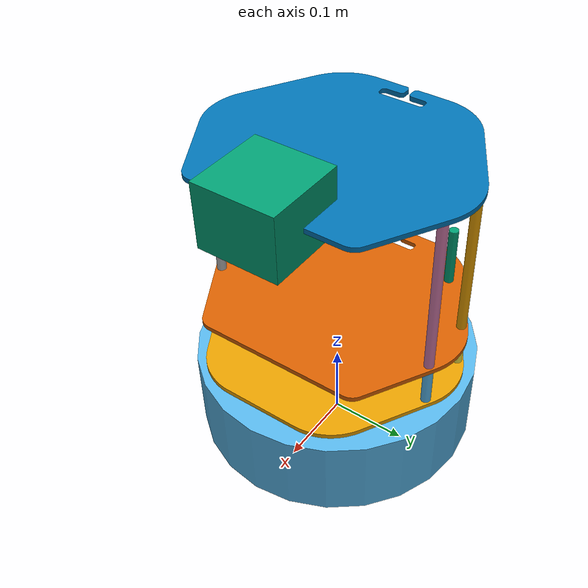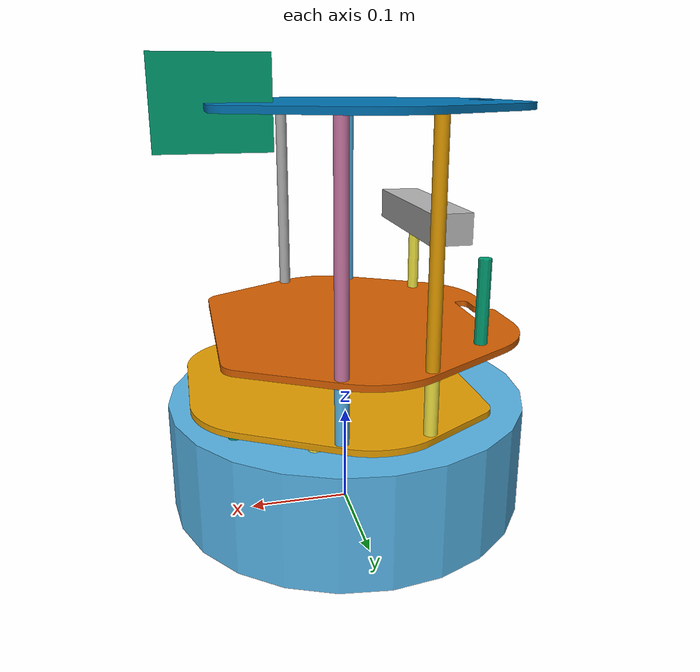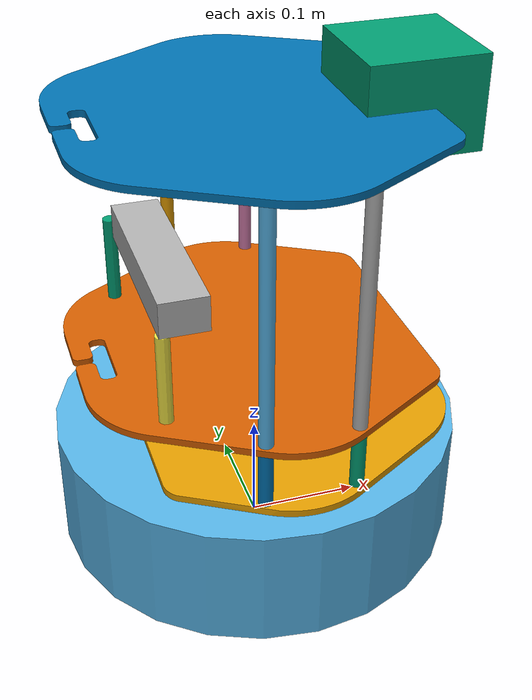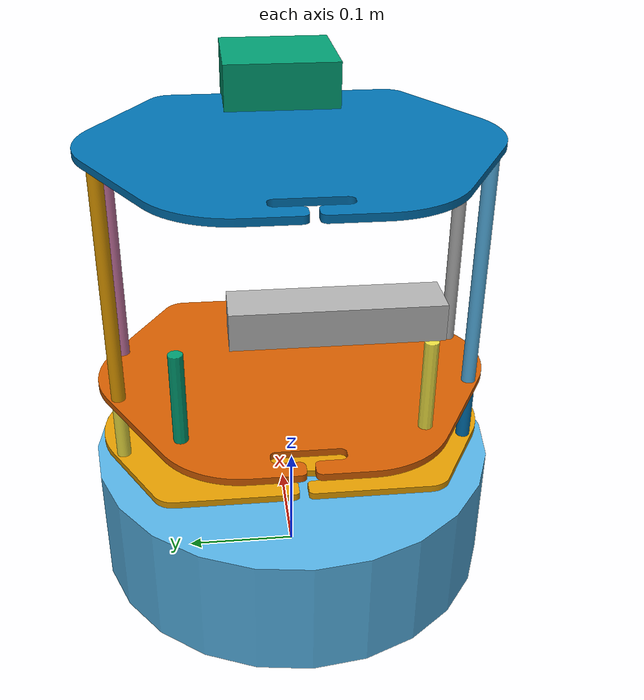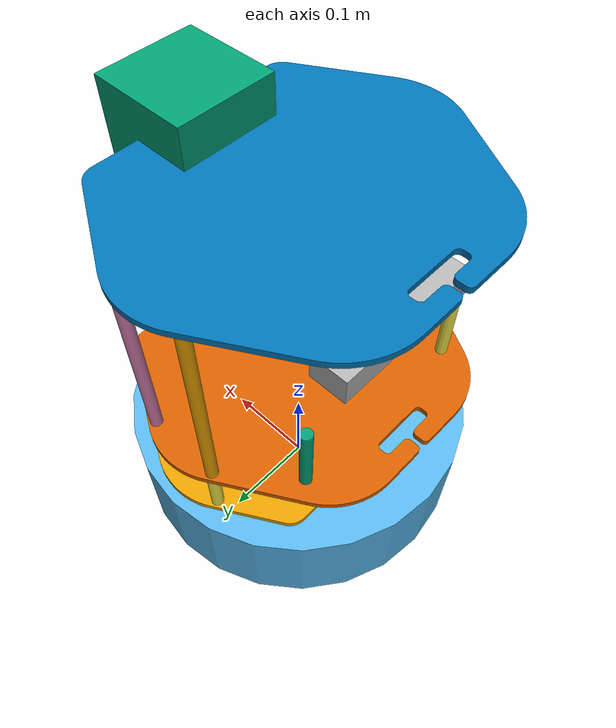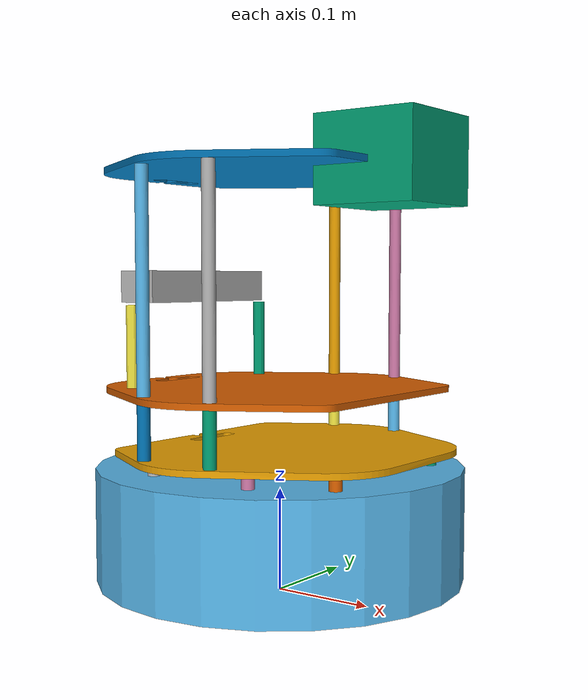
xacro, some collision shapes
<?xml version="1.0"?>
<!--
    - Base      : kobuki
    - Stacks    : hexagons
    - 3d Sensor : astra
    - top_plate : urg04lx
-->
<robot name="turtlebot" xmlns:xacro="http://ros.org/wiki/xacro">

  <xacro:arg name="prefix_frame" default=""/>
  <xacro:include filename="$(find turtlebot_description)/urdf/turtlebot_library_multi.urdf.xacro" />

  <xacro:kobuki prefix_frame="$(arg prefix_frame)"/>
  <xacro:stack_hexagons prefix_frame="$(arg prefix_frame)"  parent="$(arg prefix_frame)base_link"/>
  <xacro:sensor_astra prefix_frame="$(arg prefix_frame)" parent="$(arg prefix_frame)base_link"/>
  <sensor_hokuyo_urg04lx prefix="$(arg prefix_frame)" parent="$(arg prefix_frame)plate_top_link" >
		<origin xyz="0.137 0 0.0525" rpy="0 0 0" />
  </sensor_hokuyo_urg04lx>

  <!-- here add the arm -->

</robot>

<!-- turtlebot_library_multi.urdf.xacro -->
<!--
  The complete turtlebot library of xacros for easy reference
 -->
<robot xmlns:xacro="http://ros.org/wiki/xacro">
  <!-- General -->
  <xacro:include filename="$(find turtlebot_description)/urdf/common_properties.urdf.xacro"/>
  <xacro:include filename="$(find turtlebot_description)/urdf/turtlebot_properties.urdf.xacro"/>
  <!-- Bases -->
  <!--xacro:include filename="$(find create_description)/urdf/create.urdf.xacro"/-->
  <xacro:include filename="$(find turtlebot_description)/urdf/kobuki_multi.urdf.xacro" />
  <!-- Stacks -->
  <xacro:include filename="$(find turtlebot_description)/urdf/stacks/circles.urdf.xacro"/>
  <xacro:include filename="$(find turtlebot_description)/urdf/stacks/hexagons.urdf.xacro"/>
  <xacro:include filename="$(find turtlebot_description)/urdf/stacks/nostacks.urdf.xacro"/>
  <!-- 3D Sensors -->
  <xacro:include filename="$(find turtlebot_description)/urdf/sensors/kinect.urdf.xacro"/>
  <xacro:include filename="$(find turtlebot_description)/urdf/sensors/asus_xtion_pro.urdf.xacro"/>
  <xacro:include filename="$(find turtlebot_description)/urdf/sensors/asus_xtion_pro_offset.urdf.xacro"/>
  <xacro:include filename="$(find turtlebot_description)/urdf/sensors/astra.urdf.xacro"/>
  <!-- 2D Sensors -->
  <xacro:include filename="$(find turtlebot_description)/urdf/sensors/rplidar.urdf.xacro"/>
  <xacro:include filename="$(find turtlebot_description)/urdf/sensors/hokuyo_urg04lx.urdf.xacro"/>
  <!-- Arms -->

</robot>

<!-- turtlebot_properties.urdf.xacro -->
<robot>
  <!--
    These properties must be observed by any machine
    that wants to be defined as a turtlebot. Refer
    to the REP for more details.

    http://www.ros.org/reps/rep-0119.html
   -->

	<property name="cam_px" value="-0.087" />
	<property name="cam_pz" value="0.2870" />
	<property name="cam_or" value="0" />
	<property name="cam_op" value="0" />
	<property name="cam_oy" value="0" />
</robot>

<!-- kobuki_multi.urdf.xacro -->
<robot name="kobuki" xmlns:xacro="http://ros.org/wiki/xacro">
  <xacro:include filename="$(find turtlebot_description)/urdf/common_properties.urdf.xacro"/>
  <xacro:include filename="$(find turtlebot_description)/urdf/kobuki_gazebo.urdf.xacro"/>

  <!-- Kobuki -->
  <xacro:macro name="kobuki" params="prefix_frame">
    <link name="${prefix_frame}base_footprint"/>
    <joint name="${prefix_frame}base_joint" type="fixed">
      <origin xyz="0 0 0.0102" rpy="0 0 0" />
      <parent link="${prefix_frame}base_footprint"/>
      <child link="${prefix_frame}base_link" />
    </joint>
    <link name="${prefix_frame}base_link">
      <visual>
        <geometry>
          <!-- new mesh -->
          <mesh filename="package://kobuki_description/meshes/main_body.dae" />
        </geometry>
        <origin xyz="0.001 0 0.05199" rpy="0 0 0"/>
      </visual>
      <collision name="base">
        <geometry>
          <cylinder length="0.10938" radius="0.178"/>
        </geometry>
        <origin xyz="0.0 0 0.05949" rpy="0 0 0"/>
      </collision>
      <inertial>
        <!-- COM experimentally determined -->
        <origin xyz="0.01 0 0"/>
        <mass value="2.4"/> <!-- 2.4/2.6 kg for small/big battery pack -->
        <inertia ixx="0.019995" ixy="0.0" ixz="0.0"
                 iyy="0.019995" iyz="0.0"
                 izz="0.03675" />
      </inertial>
    </link>

    <joint name="${prefix_frame}wheel_left_joint" type="continuous">
      <parent link="${prefix_frame}base_link"/>
      <child link="${prefix_frame}wheel_left_link"/>
      <origin xyz="0.00 ${0.23/2} 0.0250" rpy="${-M_PI/2} 0 0"/>
      <axis xyz="0 0 1"/>
    </joint>
    <link name="${prefix_frame}wheel_left_link">
      <visual>
        <geometry>
          <mesh filename="package://kobuki_description/meshes/wheel.dae"/>
        </geometry>
        <origin xyz="0 0 0" rpy="0 0 0"/>
      </visual>
      <collision>
        <geometry>
          <cylinder length="0.0206" radius="0.0352"/>
        </geometry>
        <origin rpy="0 0 0" xyz="0 0 0"/>
      </collision>
      <inertial>
        <mass value="0.01" />
        <origin xyz="0 0 0" />
        <inertia ixx="0.001" ixy="0.0" ixz="0.0"
                 iyy="0.001" iyz="0.0"
                 izz="0.001" />
      </inertial>
    </link>

    <joint name="${prefix_frame}wheel_right_joint" type="continuous">
      <parent link="${prefix_frame}base_link"/>
      <child link="${prefix_frame}wheel_right_link"/>
      <origin xyz="0.00 -${0.23/2} 0.0250" rpy="${-M_PI/2} 0 0"/>
      <axis xyz="0 0 1"/>
    </joint>
    <link name="${prefix_frame}wheel_right_link">
      <visual>
        <geometry>
          <mesh filename="package://kobuki_description/meshes/wheel.dae"/>
        </geometry>
        <origin xyz="0 0 0" rpy="0 0 0"/>
      </visual>
      <collision>
        <geometry>
          <cylinder length="0.0206" radius="0.0350"/>
        </geometry>
        <origin rpy="0 0 0" xyz="0 0 0"/>
      </collision>
      <inertial>
        <mass value="0.01" />
        <origin xyz="0 0 0" />
        <inertia ixx="0.001" ixy="0.0" ixz="0.0"
                 iyy="0.001" iyz="0.0"
                 izz="0.001" />
      </inertial>
    </link>

    <joint name="${prefix_frame}caster_front_joint" type="fixed">
      <parent link="${prefix_frame}base_link"/>
      <child link="${prefix_frame}caster_front_link"/>
      <origin xyz="0.115 0.0 0.007" rpy="${-M_PI/2} 0 0"/>
    </joint>
    <link name="${prefix_frame}caster_front_link">
      <collision>
        <geometry>
          <cylinder length="0.0176" radius="0.017"/>
        </geometry>
        <origin rpy="0 0 0" xyz="0 0 0"/>
      </collision>
      <inertial>
        <mass value="0.01" />
        <origin xyz="0 0 0" />
        <inertia ixx="0.001" ixy="0.0" ixz="0.0"
                 iyy="0.001" iyz="0.0"
                 izz="0.001" />
      </inertial>
    </link>

    <joint name="${prefix_frame}caster_back_joint" type="fixed">
      <parent link="${prefix_frame}base_link"/>
      <child link="${prefix_frame}caster_back_link"/>
      <origin xyz="-0.135 0.0 0.009" rpy="${-M_PI/2} 0 0"/>
    </joint>
    <link name="${prefix_frame}caster_back_link">
      <collision>
        <geometry>
          <cylinder length="0.0176" radius="0.017"/>
        </geometry>
        <origin rpy="0 0 0" xyz="0 0 0"/>
      </collision>
      <inertial>
        <mass value="0.01" />
        <origin xyz="0 0 0" />
        <inertia ixx="0.001" ixy="0.0" ixz="0.0"
                 iyy="0.001" iyz="0.0"
                 izz="0.001" />
      </inertial>
    </link>

    <!-- Kobuki's sensors -->
    <joint name="${prefix_frame}gyro_joint" type="fixed">
      <axis xyz="0 1 0"/>
      <origin xyz="0.056 0.062 0.0202" rpy="0 0 0"/>
      <parent link="${prefix_frame}base_link"/>
      <child link="${prefix_frame}gyro_link"/>
    </joint>
    <link name="${prefix_frame}gyro_link">
      <inertial>
        <mass value="0.001"/>
        <origin xyz="0 0 0" rpy="0 0 0"/>
        <inertia ixx="0.0001" ixy="0" ixz="0"
                 iyy="0.000001" iyz="0"
                 izz="0.0001"/>
      </inertial>
    </link>

    <joint name="${prefix_frame}cliff_sensor_left_joint" type="fixed">
      <origin xyz="0.08734 0.13601 0.0214" rpy="0 ${M_PI/2} 0" />
      <parent link="${prefix_frame}base_link"/>
      <child link="${prefix_frame}cliff_sensor_left_link" />
    </joint>
    <link name="${prefix_frame}cliff_sensor_left_link">
      <inertial>
        <mass value="0.0001" />
        <origin xyz="0 0 0" />
        <inertia ixx="0.0001" ixy="0.0" ixz="0.0"
                 iyy="0.0001" iyz="0.0"
                 izz="0.0001" />
      </inertial>
    </link>

    <joint name="${prefix_frame}cliff_sensor_right_joint" type="fixed">
      <origin xyz="0.085 -0.13601 0.0214" rpy="0 ${M_PI/2} 0" />
      <parent link="${prefix_frame}base_link"/>
      <child link="${prefix_frame}cliff_sensor_right_link" />
    </joint>
    <link name="${prefix_frame}cliff_sensor_right_link">
      <inertial>
        <mass value="0.0001" />
        <origin xyz="0 0 0" />
        <inertia ixx="0.0001" ixy="0.0" ixz="0.0"
                 iyy="0.0001" iyz="0.0"
                 izz="0.0001" />
      </inertial>
    </link>

    <joint name="${prefix_frame}cliff_sensor_front_joint" type="fixed">
      <origin xyz="0.156 0.00 0.0214" rpy="0 ${M_PI/2} 0" />
      <parent link="${prefix_frame}base_link"/>
      <child link="${prefix_frame}cliff_sensor_front_link" />
    </joint>
    <link name="${prefix_frame}cliff_sensor_front_link">
      <inertial>
        <mass value="0.0001" />
        <origin xyz="0 0 0" />
        <inertia ixx="0.0001" ixy="0.0" ixz="0.0"
                 iyy="0.0001" iyz="0.0"
                 izz="0.0001" />
      </inertial>
    </link>

    <!-- Kobuki Gazebo simulation details -->
    <xacro:kobuki_sim prefix_frame="${prefix_frame}"/>

  </xacro:macro>

</robot>

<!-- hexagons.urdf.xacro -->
<!--
  Hexagon stacks
 -->
<robot name="stack_hexagons" xmlns:xacro="http://ros.org/wiki/xacro">
  <xacro:include filename="$(find turtlebot_description)/urdf/common_properties.urdf.xacro"/>

  <!-- Xacro properties -->
  <xacro:property name="M_SCALE" value="0.001"/>

  <!-- Xacro macros -->
  <!-- Pole macros -->
  <xacro:macro name="stack_bottom_pole" params="prefix_frame parent number x_loc y_loc z_loc">
    <joint name="${prefix_frame}pole_bottom_${number}_joint" type="fixed">
      <origin xyz="${x_loc} ${y_loc} ${z_loc}" rpy="0 0 0"/>
      <parent link="${parent}"/>
      <child link="${prefix_frame}pole_bottom_${number}_link"/>
    </joint>
    <link name="${prefix_frame}pole_bottom_${number}_link">
      <visual>
        <origin xyz="0 0 0" rpy="0 0 0"/>
        <geometry>
          <mesh filename="package://turtlebot_description/meshes/stacks/hexagons/pole_bottom.dae"/>
        </geometry>
      </visual>
      <collision>
        <origin xyz="0 0 0" rpy="0 0 0"/>
        <geometry>
          <cylinder length="0.0492" radius="0.006"/>
        </geometry>
      </collision>
      <inertial>
        <mass value="0.008"/>
        <origin xyz="0 0 0" rpy="0 0 0"/>
        <inertia ixx="0.000001686" ixy="0.0" ixz="0.0"
                 iyy="0.000001686" iyz="0.0"
                 izz="0.000000144"/>
      </inertial>
    </link>
  </xacro:macro>

  <xacro:macro name="stack_middle_pole" params="prefix_frame parent number x_loc y_loc z_loc">
    <joint name="${prefix_frame}pole_middle_${number}_joint" type="fixed">
      <origin xyz="${x_loc} ${y_loc} ${z_loc}" rpy="0 0 0" />
      <parent link="${parent}"/>
      <child link="${prefix_frame}pole_middle_${number}_link"/>
    </joint>
    <link name="${prefix_frame}pole_middle_${number}_link">
      <visual>
        <origin xyz="0 0 0" rpy="0 ${M_PI} 0"/>
        <geometry>
          <mesh filename="package://turtlebot_description/meshes/stacks/hexagons/pole_middle.dae"/>
        </geometry>
      </visual>
      <collision>
        <origin xyz="0 0 0" rpy="0 0 0"/>
        <geometry>
          <cylinder length="0.0608" radius="0.006"/>
        </geometry>
      </collision>
      <inertial>
        <mass value="0.012"/>
        <origin xyz="0 0 0"/>
        <inertia ixx="0.000003805" ixy="0.0" ixz="0.0"
                 iyy="0.000003805" iyz="0.0"
                 izz="0.000000216"/>
      </inertial>
    </link>
  </xacro:macro>

  <xacro:macro name="stack_top_pole" params="prefix_frame parent number x_loc y_loc z_loc">
    <joint name="${prefix_frame}pole_top_${number}_joint" type="fixed">
      <origin xyz="${x_loc} ${y_loc} ${z_loc}" rpy="0 0 0"/>
      <parent link="${parent}"/>
      <child link="${prefix_frame}pole_top_${number}_link"/>
    </joint>
    <link name="${prefix_frame}pole_top_${number}_link">
      <visual>
        <origin xyz=" 0 0 0" rpy="0 0 0"/>
        <geometry>
          <mesh filename="package://turtlebot_description/meshes/stacks/hexagons/pole_top.dae"/>
        </geometry>
      </visual>
      <collision>
        <origin xyz="0 0 0" rpy="0 0 0"/>
        <geometry>
          <cylinder length="0.2032" radius="0.006"/>
        </geometry>
      </collision>
      <inertial>
        <mass value="0.060"/>
        <origin xyz="0 0 0"/>
        <inertia ixx="0.000206991" ixy="0.0" ixz="0.0"
                 iyy="0.000206991" iyz="0.0"
                 izz="0.000001080"/>
      </inertial>
    </link>
  </xacro:macro>

  <xacro:macro name="stack_3d_sensor_pole" params="prefix_frame parent number x_loc y_loc z_loc">
    <joint name="${prefix_frame}pole_kinect_${number}_joint" type="fixed">
      <origin xyz="${x_loc} ${y_loc} ${z_loc}" rpy="0 0 0"/>
      <parent link="${parent}"/>
      <child link="${prefix_frame}pole_kinect_${number}_link"/>
    </joint>
    <link name="${prefix_frame}pole_kinect_${number}_link">
      <visual>
        <origin xyz="0 0 -0.01" rpy="0 0 0"/>
        <geometry>
          <mesh filename="package://turtlebot_description/meshes/sensors/sensor_pole.dae" />
        </geometry>
      </visual>
      <collision>
        <origin xyz="0 0 0" rpy="0 0 0"/>
        <geometry>
          <cylinder length="0.0936" radius="0.006"/>
        </geometry>
      </collision>
      <inertial>
        <mass value="0.020"/>
        <origin xyz="0 0 0"/>
        <inertia ixx="0.000014782" ixy="0.0" ixz="0.0"
                 iyy="0.000014782" iyz="0.0"
                 izz="0.000000360"/>
      </inertial>
    </link>
  </xacro:macro>

  <xacro:macro name="stack_hexagons" params="prefix_frame parent">
    <stack_bottom_pole prefix_frame="${prefix_frame}" parent="${parent}" number="0" x_loc= "0.120" y_loc= "0.082" z_loc="0.1028"/>
    <stack_bottom_pole prefix_frame="${prefix_frame}" parent="${parent}" number="1" x_loc= "0.055" y_loc= "0.120" z_loc="0.1028"/>
    <stack_bottom_pole prefix_frame="${prefix_frame}" parent="${parent}" number="2" x_loc="-0.055" y_loc= "0.120" z_loc="0.1028"/>
    <stack_bottom_pole prefix_frame="${prefix_frame}" parent="${parent}" number="3" x_loc= "0.120" y_loc="-0.082" z_loc="0.1028"/>
    <stack_bottom_pole prefix_frame="${prefix_frame}" parent="${parent}" number="4" x_loc= "0.055" y_loc="-0.120" z_loc="0.1028"/>
    <stack_bottom_pole prefix_frame="${prefix_frame}" parent="${parent}" number="5" x_loc="-0.055" y_loc="-0.120" z_loc="0.1028"/>

    <joint name="${prefix_frame}plate_bottom_joint" type="fixed">
      <origin xyz="0.02364 0.0 0.1306" rpy="0 0 0"/>
      <parent link="${parent}"/>
      <child link="${prefix_frame}plate_bottom_link"/>
    </joint>
    <link name="${prefix_frame}plate_bottom_link">
      <visual>
        <origin xyz="0 0 0" rpy="0 0 0"/>
        <geometry>
          <mesh filename="package://turtlebot_description/meshes/stacks/hexagons/plate_bottom.dae"/>
        </geometry>
      </visual>
      <collision>
        <origin xyz="-0.02364 0 0" rpy="0 0 0"/>
        <geometry>
          <cylinder length="0.006" radius="0.170"/>
        </geometry>
      </collision>
      <inertial>
        <mass value="0.520" />
        <origin xyz="0 0 0" />
        <inertia ixx="0.003328" ixy="0.0" ixz="0.0"
                 iyy="0.003328" iyz="0.0"
                 izz="0.006656" />
      </inertial>
    </link>

    <stack_middle_pole prefix_frame="${prefix_frame}" parent="${parent}" number="0" x_loc= "0.0381" y_loc= "0.1505" z_loc="0.1640"/>
    <stack_middle_pole prefix_frame="${prefix_frame}" parent="${parent}" number="1" x_loc= "0.0381" y_loc="-0.1505" z_loc="0.1640"/>
    <stack_middle_pole prefix_frame="${prefix_frame}" parent="${parent}" number="2" x_loc="-0.0381" y_loc= "0.1505" z_loc="0.1640"/>
    <stack_middle_pole prefix_frame="${prefix_frame}" parent="${parent}" number="3" x_loc="-0.0381" y_loc="-0.1505" z_loc="0.1640"/>

    <joint name="${prefix_frame}plate_middle_joint" type="fixed">
      <origin xyz="-0.01364 0.0 0.1874" rpy="0 0 0"/>
      <parent link="${parent}"/>
      <child link="${prefix_frame}plate_middle_link"/>
    </joint>
    <link name="${prefix_frame}plate_middle_link">
      <visual>
        <origin xyz="0 0 0" rpy="0 0 0"/>
        <geometry>
          <mesh filename="package://turtlebot_description/meshes/stacks/hexagons/plate_middle.dae"/>
        </geometry>
      </visual>
      <collision>
        <origin xyz="0.01364 0.0 0.0" rpy="0 0 0"/>
        <geometry>
          <cylinder length="0.006" radius="0.170"/>
        </geometry>
      </collision>
      <inertial>
        <mass value="0.520" />
        <origin xyz="0 0 0" />
        <inertia ixx="0.003328" ixy="0.0" ixz="0.0"
                 iyy="0.003328" iyz="0.0"
                 izz="0.006656" />
      </inertial>
    </link>

    <stack_top_pole prefix_frame="${prefix_frame}" parent="${parent}" number="0" x_loc= "0.0381" y_loc= "0.1505" z_loc="0.2920"/>
    <stack_top_pole prefix_frame="${prefix_frame}" parent="${parent}" number="1" x_loc= "0.0381" y_loc="-0.1505" z_loc="0.2920"/>
    <stack_top_pole prefix_frame="${prefix_frame}" parent="${parent}" number="2" x_loc="-0.0381" y_loc= "0.1505" z_loc="0.2920"/>
    <stack_top_pole prefix_frame="${prefix_frame}" parent="${parent}" number="3" x_loc="-0.0381" y_loc="-0.1505" z_loc="0.2920"/>
    <stack_3d_sensor_pole prefix_frame="${prefix_frame}" parent="${parent}" number="0" x_loc="-0.1024" y_loc= "0.098" z_loc="0.2372"/>
    <stack_3d_sensor_pole prefix_frame="${prefix_frame}" parent="${parent}" number="1" x_loc="-0.1024" y_loc="-0.098" z_loc="0.2372"/>

    <joint name="${prefix_frame}plate_top_joint" type="fixed">
      <origin xyz="-0.01364 0.0  0.3966" rpy="0 0 0"/>
      <parent link="${parent}"/>
      <child link="${prefix_frame}plate_top_link"/>
    </joint>
    <link name="${prefix_frame}plate_top_link">
      <visual>
        <origin xyz="0 0 0" rpy="0 0 0"/>
        <geometry>
          <mesh filename="package://turtlebot_description/meshes/stacks/hexagons/plate_top.dae"/>
        </geometry>
      </visual>
      <collision>
        <origin xyz="0.01364 0 0" rpy="0 0 0"/>
        <geometry>
          <cylinder length="0.006" radius="0.170"/>
        </geometry>
      </collision>
      <inertial>
        <mass value="0.520"/>
        <origin xyz="0 0 0"/>
        <inertia ixx="0.003328" ixy="0.0" ixz="0.0"
                 iyy="0.003328" iyz="0.0"
                 izz="0.006656" />
      </inertial>
    </link>
  </xacro:macro>
</robot>

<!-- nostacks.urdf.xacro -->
<!--
  Hexagon stacks
 -->
<robot name="no_stacks" xmlns:xacro="http://ros.org/wiki/xacro">
  <xacro:include filename="$(find turtlebot_description)/urdf/common_properties.urdf.xacro"/>
  <xacro:include filename="$(find turtlebot_description)/urdf/stacks/nostacks.gazebo.xacro"/>
  <xacro:include filename="$(find turtlebot_description)/urdf/stacks/nostacks.transmission.xacro"/>

  <!-- Xacro properties -->
  <xacro:property name="M_SCALE" value="0.001"/>

  <!-- Xacro macros -->
  <!-- Pole macros -->
  <xacro:macro name="stack_bottom_pole" params="prefix_frame parent number x_loc y_loc z_loc">
    <joint name="${prefix_frame}pole_bottom_${number}_joint" type="fixed">
      <origin xyz="${x_loc} ${y_loc} ${z_loc}" rpy="0 0 0"/>
      <parent link="${parent}"/>
      <child link="${prefix_frame}pole_bottom_${number}_link"/>
    </joint>
    <link name="${prefix_frame}pole_bottom_${number}_link">
      <visual>
        <origin xyz="0 0 0" rpy="0 0 0"/>
        <geometry>
          <mesh filename="package://turtlebot_description/meshes/stacks/hexagons/pole_bottom.dae"/>
        </geometry>
      </visual>
      <collision>
        <origin xyz="0 0 0" rpy="0 0 0"/>
        <geometry>
          <cylinder length="0.0492" radius="0.006"/>
        </geometry>
      </collision>
      <inertial>
        <mass value="0.008"/>
        <origin xyz="0 0 0" rpy="0 0 0"/>
        <inertia ixx="0.000001686" ixy="0.0" ixz="0.0"
                 iyy="0.000001686" iyz="0.0"
                 izz="0.000000144"/>
      </inertial>
    </link>
  </xacro:macro>

  <xacro:macro name="stack_middle_pole" params="prefix_frame parent number x_loc y_loc z_loc">
    <joint name="${prefix_frame}pole_middle_${number}_joint" type="fixed">
      <origin xyz="${x_loc} ${y_loc} ${z_loc}" rpy="0 0 0" />
      <parent link="${parent}"/>
      <child link="${prefix_frame}pole_middle_${number}_link"/>
    </joint>
    <link name="${prefix_frame}pole_middle_${number}_link">
      <visual>
        <origin xyz="0 0 0" rpy="0 ${M_PI} 0"/>
        <geometry>
          <mesh filename="package://turtlebot_description/meshes/stacks/hexagons/pole_middle.dae"/>
        </geometry>
      </visual>
      <collision>
        <origin xyz="0 0 0" rpy="0 0 0"/>
        <geometry>
          <cylinder length="0.0608" radius="0.006"/>
        </geometry>
      </collision>
      <inertial>
        <mass value="0.012"/>
        <origin xyz="0 0 0"/>
        <inertia ixx="0.000003805" ixy="0.0" ixz="0.0"
                 iyy="0.000003805" iyz="0.0"
                 izz="0.000000216"/>
      </inertial>
    </link>
  </xacro:macro>

  <xacro:macro name="no_stacks" params="prefix_frame parent">
    <stack_bottom_pole prefix_frame="${prefix_frame}" parent="${parent}" number="0" x_loc= "0.120" y_loc= "0.082" z_loc="0.1028"/>
    <stack_bottom_pole prefix_frame="${prefix_frame}" parent="${parent}" number="1" x_loc= "0.055" y_loc= "0.120" z_loc="0.1028"/>
    <stack_bottom_pole prefix_frame="${prefix_frame}" parent="${parent}" number="2" x_loc="-0.055" y_loc= "0.120" z_loc="0.1028"/>
    <stack_bottom_pole prefix_frame="${prefix_frame}" parent="${parent}" number="3" x_loc= "0.120" y_loc="-0.082" z_loc="0.1028"/>
    <stack_bottom_pole prefix_frame="${prefix_frame}" parent="${parent}" number="4" x_loc= "0.055" y_loc="-0.120" z_loc="0.1028"/>
    <stack_bottom_pole prefix_frame="${prefix_frame}" parent="${parent}" number="5" x_loc="-0.055" y_loc="-0.120" z_loc="0.1028"/>

    <joint name="${prefix_frame}plate_bottom_joint" type="fixed">
      <origin xyz="0.02364 0.0 0.1306" rpy="0 0 0"/>
      <parent link="${parent}"/>
      <child link="${prefix_frame}plate_bottom_link"/>
    </joint>
    <link name="${prefix_frame}plate_bottom_link">
      <visual>
        <origin xyz="0 0 0" rpy="0 0 0"/>
        <geometry>
          <mesh filename="package://turtlebot_description/meshes/stacks/hexagons/plate_bottom.dae"/>
        </geometry>
      </visual>
      <collision>
        <origin xyz="-0.02364 0 0" rpy="0 0 0"/>
        <geometry>
          <cylinder length="0.007" radius="0.170"/>
        </geometry>
      </collision>
      <inertial>
        <mass value="0.520" />
        <origin xyz="0 0 0" />
        <inertia ixx="0.003328" ixy="0.0" ixz="0.0"
                 iyy="0.003328" iyz="0.0"
                 izz="0.006656" />
      </inertial>
    </link>

    <stack_middle_pole prefix_frame="${prefix_frame}" parent="${parent}" number="0" x_loc= "0.0381" y_loc= "0.1505" z_loc="0.1640"/>
    <stack_middle_pole prefix_frame="${prefix_frame}" parent="${parent}" number="1" x_loc= "0.0381" y_loc="-0.1505" z_loc="0.1640"/>
    <stack_middle_pole prefix_frame="${prefix_frame}" parent="${parent}" number="2" x_loc="-0.0381" y_loc= "0.1505" z_loc="0.1640"/>
    <stack_middle_pole prefix_frame="${prefix_frame}" parent="${parent}" number="3" x_loc="-0.0381" y_loc="-0.1505" z_loc="0.1640"/>

    <joint name="${prefix_frame}plate_middle_joint" type="prismatic">
      <origin xyz="-0.01364 0.0 0.1914" rpy="0 0 0"/>
      <parent link="${parent}"/>
      <child link="${prefix_frame}plate_middle_link"/>
      <limit lower="0.0" upper="0.1" effort="1.0" velocity="0.05"/>
      <axis xyz="0 0 1"/>
    </joint>
    <link name="${prefix_frame}plate_middle_link">
      <visual>
        <origin xyz="0 0 0" rpy="0 0 0"/>
        <geometry>
          <mesh filename="package://turtlebot_description/meshes/stacks/hexagons/plate_middle.dae"/>
        </geometry>
      </visual>
      <collision>
        <origin xyz="0.01364 0.0 0.0" rpy="0 0 0"/>
        <geometry>
          <cylinder length="0.007" radius="0.150"/>
        </geometry>
      </collision>
      <inertial>
        <mass value="0.0520" />
        <origin xyz="0 0 0" />
        <inertia ixx="0.0003328" ixy="0.0" ixz="0.0"
                 iyy="0.0003328" iyz="0.0"
                 izz="0.0006656" />
      </inertial>
    </link>
    <gazebo reference="${prefix_frame}plate_middle_link">
    <collision name="${prefix_frame}plate_middle_link_collision">
      <surface>
        <friction>
		  <ode>
              <mu>1000</mu>
              <mu2>1000</mu2>
              <fdir1>0 0 0</fdir1>
              <slip1>0</slip1>
              <slip2>0</slip2>
            </ode>
        </friction>
      </surface>
    </collision>
  </gazebo>
  <xacro:elevator_transmission prefix_frame="${prefix_frame}" />

  </xacro:macro>

</robot>

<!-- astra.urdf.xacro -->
<robot name="sensor_astra" xmlns:xacro="http://ros.org/wiki/xacro">
  <xacro:include filename="$(find turtlebot_description)/urdf/turtlebot_gazebo.urdf.xacro"/>
  <xacro:include filename="$(find turtlebot_description)/urdf/turtlebot_properties.urdf.xacro"/>

  <!-- Xacro properties -->
  <xacro:property name="astra_cam_py" value="-0.0125"/>
  <xacro:property name="astra_depth_rel_rgb_py" value="0.0250" />
  <xacro:property name="astra_cam_rel_rgb_py"   value="-0.0125" />
  <xacro:property name="astra_dae_display_scale"   value="1.0" />
  <!-- Parameterised in part by the values in turtlebot_properties.urdf.xacro -->
  <xacro:macro name="sensor_astra" params="prefix_frame parent">
    <joint name="${prefix_frame}camera_rgb_joint" type="fixed">
      <origin xyz="${cam_px} ${astra_cam_py} ${cam_pz}"
              rpy="0 0 0"/>
      <parent link="${parent}"/>
      <child link="${prefix_frame}camera_rgb_frame" />
    </joint>
    <link name="${prefix_frame}camera_rgb_frame"/>

    <joint name="${prefix_frame}camera_rgb_optical_joint" type="fixed">
      <origin xyz="0 0 0" rpy="${-M_PI/2} 0 ${-M_PI/2}" />
      <parent link="${prefix_frame}camera_rgb_frame" />
      <child link="${prefix_frame}camera_rgb_optical_frame" />
    </joint>
    <link name="${prefix_frame}camera_rgb_optical_frame"/>

    <joint name="${prefix_frame}camera_joint" type="fixed">
      <origin xyz="0 ${astra_cam_rel_rgb_py} 0"
              rpy="0 0 0"/>
      <parent link="${prefix_frame}camera_rgb_frame"/>
      <child link="${prefix_frame}camera_link"/>
    </joint>
    <link name="${prefix_frame}camera_link">
      <visual>
        <origin xyz="0 0 0" rpy="0 0 0"/>
        <geometry>
          <mesh filename="package://turtlebot_description/meshes/sensors/astra.dae" scale="${astra_dae_display_scale} ${astra_dae_display_scale} ${astra_dae_display_scale}"/>
        </geometry>
      </visual>
      <collision>
        <origin xyz="0.0 0.0 0.0" rpy="0 0 0" />
        <geometry>
        <box size="0.0400 0.1650 0.0300"/>
      </geometry>
      </collision>
      <inertial>
        <mass value="0.564" />
        <origin xyz="0 0 0" />
        <inertia ixx="0.003881243" ixy="0.0" ixz="0.0"
                 iyy="0.000498940" iyz="0.0"
                 izz="0.003879257" />
      </inertial>
    </link>

    <joint name="${prefix_frame}camera_depth_joint" type="fixed">
      <origin xyz="0 ${astra_depth_rel_rgb_py} 0" rpy="0 0 0" />
      <parent link="${prefix_frame}camera_rgb_frame" />
      <child link="${prefix_frame}camera_depth_frame" />
    </joint>
    <link name="${prefix_frame}camera_depth_frame"/>

    <joint name="${prefix_frame}camera_depth_optical_joint" type="fixed">
      <origin xyz="0 0 0" rpy="${-M_PI/2} 0 ${-M_PI/2}" />
      <parent link="${prefix_frame}camera_depth_frame" />
      <child link="${prefix_frame}camera_depth_optical_frame" />
    </joint>
    <link name="${prefix_frame}camera_depth_optical_frame"/>

    <!-- RGBD sensor for simulation, same as Kinect -->
    <turtlebot_sim_3dsensor prefix_frame="${prefix_frame}"/>

  </xacro:macro>
</robot>

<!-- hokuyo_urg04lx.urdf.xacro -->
<robot name="sensor_hokuyo_urg04lx" xmlns:xacro="http://ros.org/wiki/xacro">

  <xacro:property name="H_SCALE" value="0.025"/>

  <!--xacro:macro name="sensor_hokuyo_urg04lx" params="prefix parent *origin min_angle:=2.0943 max_angle:=-2.0943"-->
  <xacro:macro name="sensor_hokuyo_urg04lx" params="prefix parent *origin min_angle:=1.59 max_angle:=-1.59">

    <joint name="${prefix}laser_joint" type="fixed">
      <!-- FRONT MOUNT  -->
      <!-- origin xyz="0.29 0 0.1" -->
      <!-- TOP MOUNT -->
      <!-- origin xyz="0.0 0.0 0.325"-->
      <xacro:insert_block name="origin" />
      <parent link="${parent}"/>
      <child link="${prefix}laser_link"/>
    </joint>

    <link name="${prefix}laser_link">
      <collision>
        <origin xyz="0 0 -0.05" rpy="0 0 0"/>
        <geometry>
          <box size="0.1 0.1 0.08"/>
        </geometry>
      </collision>

      <visual>
        <origin xyz="0 0 -0.05" rpy="0 0 0"/>
        <geometry>
            <mesh filename="package://turtlebot_description/meshes/sensors/hokuyo_urg_04lx.dae" scale="${H_SCALE} ${H_SCALE} ${H_SCALE}"/>
        </geometry>
      </visual>

      <inertial>
        <mass value="1e-5" />
        <origin xyz="0 0 0" rpy="0 0 0"/>
        <inertia ixx="1e-6" ixy="0" ixz="0" iyy="1e-6" iyz="0" izz="1e-6" />
      </inertial>
    </link>

    <!-- Hokuyo sensor for simulation -->
    <xacro:sensor_hokuyo_urg_gazebo prefix="${prefix}"/>

  </xacro:macro>

  <xacro:macro name="sensor_hokuyo_urg_gazebo" params="prefix">
    <gazebo reference="${prefix}laser_link">
			<sensor type="ray" name="${prefix}sensor">
				<pose>0 0 0 0 0 0</pose>
				<visualize>false</visualize>
				<update_rate>10</update_rate>
				<ray>
					<scan>
						<horizontal>
							<samples>681</samples>
							<resolution>1</resolution>
							<min_angle>${min_angle}</min_angle>
							<max_angle>${max_angle}</max_angle>
						</horizontal>
					</scan>
					<range>
						<min>0.02</min>
						<max>5.6</max>
						<resolution>0.0061435</resolution>
					</range>
					<noise>
						<type>gaussian</type>
						<mean>0.0</mean>
						<stddev>0.01</stddev>
					</noise>
				</ray>
				<plugin name="gazebo_ros_head_hokuyo_controller" filename="libgazebo_ros_laser.so">
					<topicName>scan</topicName>
					<frameName>${prefix}laser_link</frameName>
					<ignoreTfPrefix>1</ignoreTfPrefix>
				</plugin>
			</sensor>
	</gazebo>
  </xacro:macro>

</robot>
